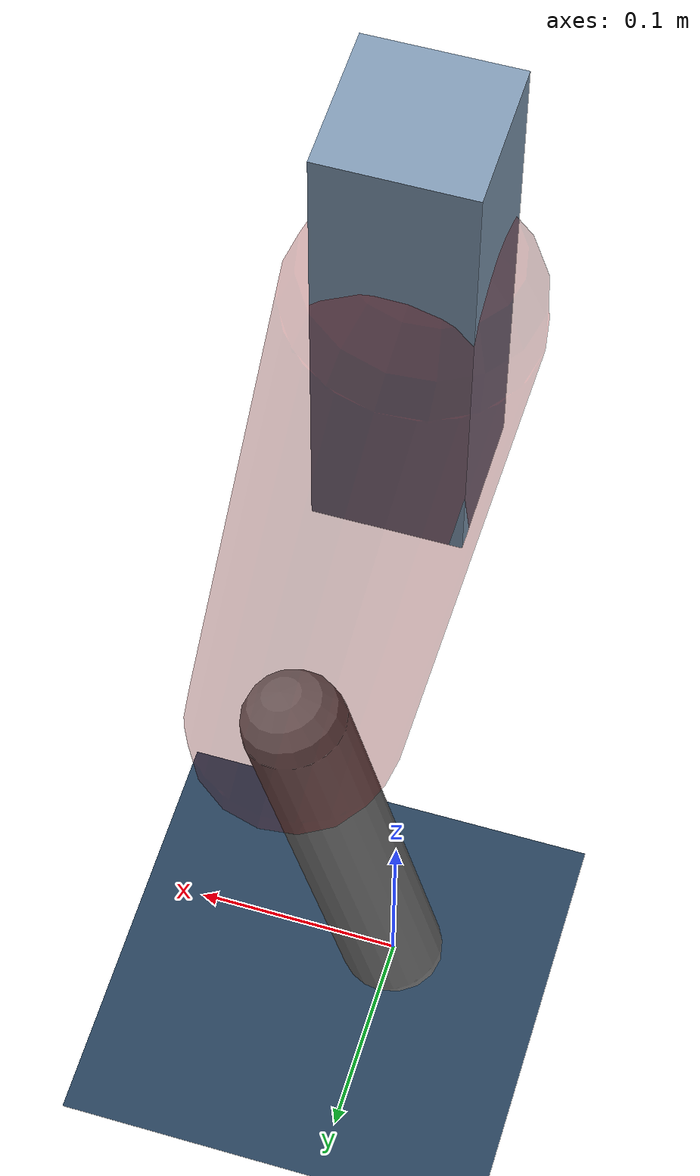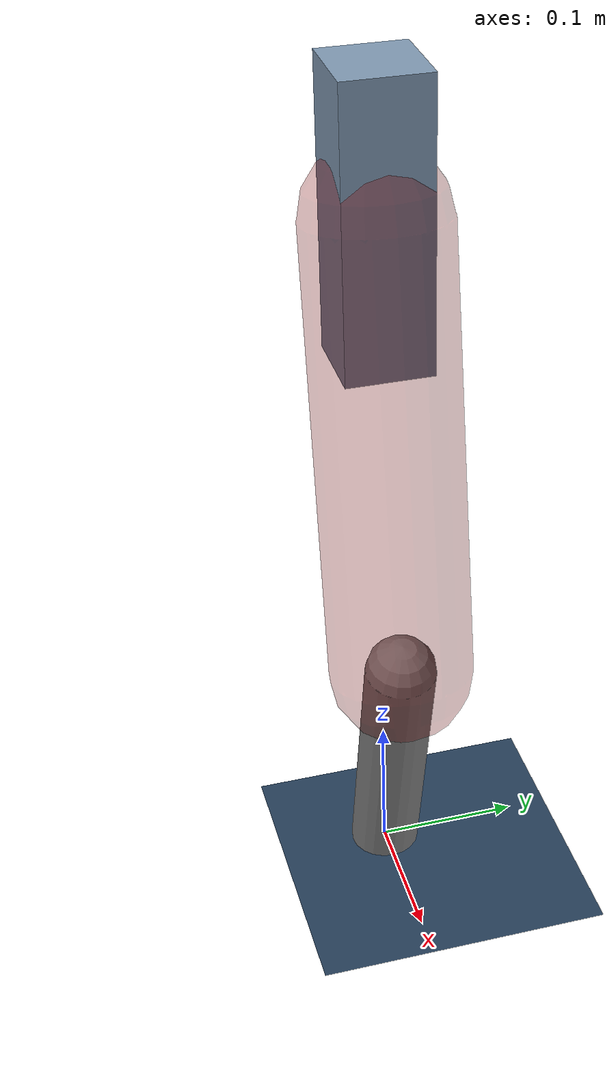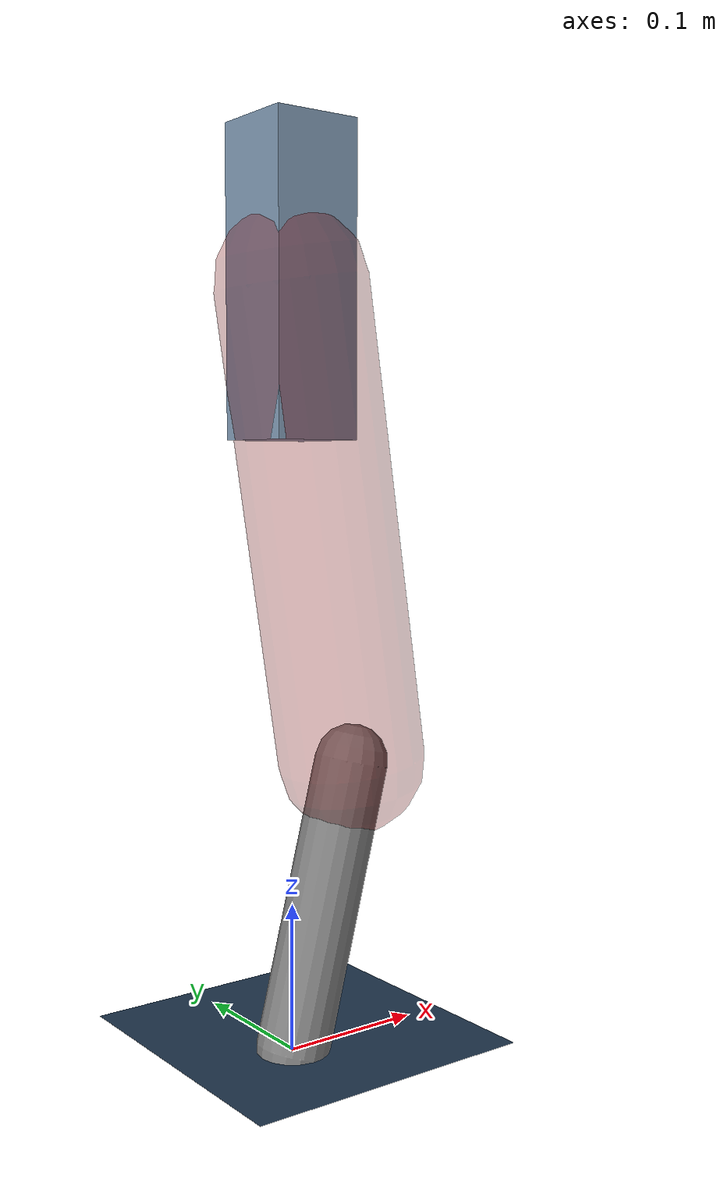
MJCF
<mujoco model="Hopper2D">
	<compiler inertiafromgeom="true" angle="radian" />
	<option timestep="0.001" integrator="implicit" cone="elliptic" solver="Newton" tolerance="1e-10" />

	<default>
		<geom contype="1" conaffinity="1" condim="3" friction="2 0.005 0.0001" solref="0.005 1" />
		<joint limited="true" damping="0.1" />
	</default>

	<asset>
		<texture name="skybox" type="skybox" builtin="gradient" rgb1=".4 .6 .8" rgb2="0 0 0" width="800" height="800" />
		<texture name="grid" type="2d" builtin="checker" rgb1=".1 .2 .3" rgb2=".2 .3 .4" width="300" height="300" mark="edge" markrgb=".2 .3 .4" />
		<material name="ground" texture="grid" texrepeat="1 1" texuniform="true" reflectance="0.1" />
		<material name="leg" rgba="0.5 0.6 0.7 1" />
	</asset>

	<worldbody>

		<geom name="floor" type="plane" size="5 5 0.25" material="ground" />

		<light directional="false" diffuse="0.8 0.8 0.8" specular="0.3 0.3 0.3" pos="0 0 2" dir="0 0 -1" />
		<light mode="targetbodycom" target="base" directional="false" diffuse="0.8 0.8 0.8" specular="0.3 0.3 0.3" pos="0 0 2" dir="0 0 -1" />

		<camera name="fixed" pos="0 -2 1" xyaxes="1 0 0 0 0 1" />
		<camera name="tracking" mode="trackcom" pos="0 -3 1" />

		<body name="root" pos="0 0 0.508528299799829">
			<joint name="slide_x" type="slide" axis="1 0 0" range="-100 100" />
			<joint name="slide_z" type="slide" axis="0 0 1" range="0 10" />

			<body name="base" pos="0 0 0">
				<geom name="torso" type="box" size="0.03 0.03 0.1" mass="2.4829999999999997" material="leg" />

				<body name="link1" pos="0 0 0" euler="0 1.4162024214085538 0">
					<joint type="hinge" axis="0 -1 0" pos="0 0 0" name="hinge1" limited="true" range="-3.14 3.14" stiffness="0" damping="0.1" />
					<geom name="thigh" type="capsule" fromto="0 0 0 0.3196638219594333 0 0" size="0.05" rgba="0.5 0 0 0.3" mass="1.0422923192904698" />

					<body name="link2" pos="0.3196638219594333 0 0" euler="0 0.4047060701314127 0">
						<joint type="hinge" axis="0 -1 0" pos="0 0 0" name="hinge2" limited="true" range="-3.14 3.14" stiffness="0" damping="0.1" />
						<geom name="shank" type="capsule" fromto="0 0 0 0.19886447784039568 0 0" size="0.025" mass="0.3999780300563561" />

					</body>
				</body>
			</body>
		</body>
	</worldbody>

	<actuator>
		<motor name="torque1" joint="hinge1" ctrlrange="-105.67396982860598 105.67396982860598" ctrllimited="true" gear="1" />
		<motor name="torque2" joint="hinge2" ctrlrange="-59.2322134795566 59.2322134795566" ctrllimited="true" gear="1" />
	</actuator>
</mujoco>
